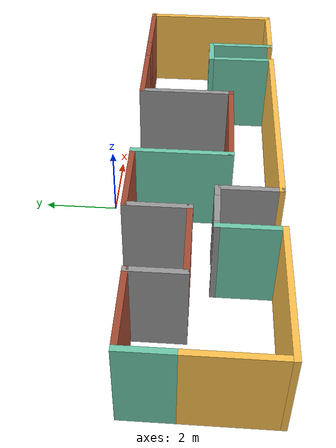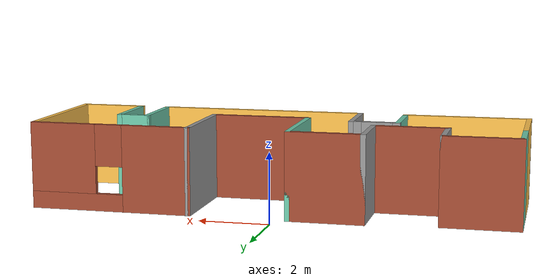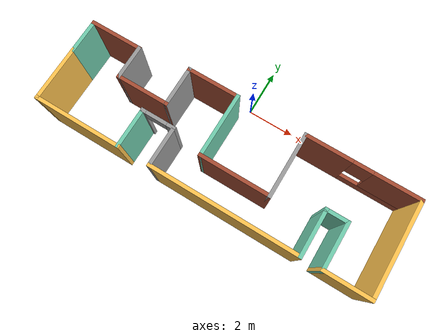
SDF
<?xml version='1.0'?>
<sdf version='1.6'>
  <model name='house'>
    <pose frame=''>0.215 -2.515 0 0 -0 0</pose>
    <link name='Wall_0'>
      <collision name='Wall_0_Collision'>
        <geometry>
          <box>
            <size>1.5 0.15 2.5</size>
          </box>
        </geometry>
        <pose frame=''>0 0 1.25 0 -0 0</pose>
      </collision>
      <visual name='Wall_0_Visual'>
        <pose frame=''>0 0 1.25 0 -0 0</pose>
        <geometry>
          <box>
            <size>1.5 0.15 2.5</size>
          </box>
        </geometry>
        <material>
          <script>
            <uri>file://media/materials/scripts/gazebo.material</uri>
            <name>Gazebo/Grey</name>
          </script>
          <ambient>0.435294 0.796078 0.67451 1</ambient>
        </material>
        <meta>
          <layer>0</layer>
        </meta>
      </visual>
      <pose frame=''>-6.875 1 0 0 -0 1.5708</pose>
    </link>
    <link name='Wall_1'>
      <collision name='Wall_1_Collision'>
        <geometry>
          <box>
            <size>2.25 0.15 2.5</size>
          </box>
        </geometry>
        <pose frame=''>0 0 1.25 0 -0 0</pose>
      </collision>
      <visual name='Wall_1_Visual'>
        <pose frame=''>0 0 1.25 0 -0 0</pose>
        <geometry>
          <box>
            <size>2.25 0.15 2.5</size>
          </box>
        </geometry>
        <material>
          <script>
            <uri>file://media/materials/scripts/gazebo.material</uri>
            <name>Gazebo/Bricks</name>
          </script>
          <ambient>1 1 1 1</ambient>
        </material>
        <meta>
          <layer>0</layer>
        </meta>
      </visual>
      <pose frame=''>-5.825 1.675 0 0 -0 0</pose>
    </link>
    <link name='Wall_10'>
      <collision name='Wall_10_Collision'>
        <geometry>
          <box>
            <size>4 0.15 2.5</size>
          </box>
        </geometry>
        <pose frame=''>0 0 1.25 0 -0 0</pose>
      </collision>
      <visual name='Wall_10_Visual'>
        <pose frame=''>0 0 1.25 0 -0 0</pose>
        <geometry>
          <box>
            <size>4 0.15 2.5</size>
          </box>
        </geometry>
        <material>
          <script>
            <uri>file://media/materials/scripts/gazebo.material</uri>
            <name>Gazebo/Grey</name>
          </script>
          <ambient>1 0.764706 0.305882 1</ambient>
        </material>
        <meta>
          <layer>0</layer>
        </meta>
      </visual>
      <pose frame=''>6.875 0 0 0 0 -1.5708</pose>
    </link>
    <link name='Wall_11'>
      <collision name='Wall_11_Collision'>
        <geometry>
          <box>
            <size>2 0.15 2.5</size>
          </box>
        </geometry>
        <pose frame=''>0 0 1.25 0 -0 0</pose>
      </collision>
      <visual name='Wall_11_Visual'>
        <pose frame=''>0 0 1.25 0 -0 0</pose>
        <geometry>
          <box>
            <size>2 0.15 2.5</size>
          </box>
        </geometry>
        <material>
          <script>
            <uri>file://media/materials/scripts/gazebo.material</uri>
            <name>Gazebo/Grey</name>
          </script>
          <ambient>1 0.764706 0.305882 1</ambient>
        </material>
        <meta>
          <layer>0</layer>
        </meta>
      </visual>
      <pose frame=''>5.95 -1.925 0 0 -0 3.14159</pose>
    </link>
    <link name='Wall_12'>
      <collision name='Wall_12_Collision'>
        <geometry>
          <box>
            <size>2 0.15 2.5</size>
          </box>
        </geometry>
        <pose frame=''>0 0 1.25 0 -0 0</pose>
      </collision>
      <visual name='Wall_12_Visual'>
        <pose frame=''>0 0 1.25 0 -0 0</pose>
        <geometry>
          <box>
            <size>2 0.15 2.5</size>
          </box>
        </geometry>
        <material>
          <script>
            <uri>file://media/materials/scripts/gazebo.material</uri>
            <name>Gazebo/Grey</name>
          </script>
          <ambient>0.435294 0.796078 0.67451 1</ambient>
        </material>
        <meta>
          <layer>0</layer>
        </meta>
      </visual>
      <pose frame=''>5.025 -1 0 0 -0 1.5708</pose>
    </link>
    <link name='Wall_13'>
      <collision name='Wall_13_Collision'>
        <geometry>
          <box>
            <size>1 0.15 2.5</size>
          </box>
        </geometry>
        <pose frame=''>0 0 1.25 0 -0 0</pose>
      </collision>
      <visual name='Wall_13_Visual'>
        <pose frame=''>0 0 1.25 0 -0 0</pose>
        <geometry>
          <box>
            <size>1 0.15 2.5</size>
          </box>
        </geometry>
        <material>
          <script>
            <uri>file://media/materials/scripts/gazebo.material</uri>
            <name>Gazebo/Grey</name>
          </script>
          <ambient>0.435294 0.796078 0.67451 1</ambient>
        </material>
        <meta>
          <layer>0</layer>
        </meta>
      </visual>
      <pose frame=''>4.6 -0.075 0 0 -0 3.14159</pose>
    </link>
    <link name='Wall_14'>
      <collision name='Wall_14_Collision'>
        <geometry>
          <box>
            <size>2 0.15 2.5</size>
          </box>
        </geometry>
        <pose frame=''>0 0 1.25 0 -0 0</pose>
      </collision>
      <visual name='Wall_14_Visual'>
        <pose frame=''>0 0 1.25 0 -0 0</pose>
        <geometry>
          <box>
            <size>2 0.15 2.5</size>
          </box>
        </geometry>
        <material>
          <script>
            <uri>file://media/materials/scripts/gazebo.material</uri>
            <name>Gazebo/Grey</name>
          </script>
          <ambient>0.435294 0.796078 0.67451 1</ambient>
        </material>
        <meta>
          <layer>0</layer>
        </meta>
      </visual>
      <pose frame=''>4.175 -1 0 0 0 -1.5708</pose>
    </link>
    <link name='Wall_15'>
      <collision name='Wall_15_Collision'>
        <geometry>
          <box>
            <size>6.25 0.15 2.5</size>
          </box>
        </geometry>
        <pose frame=''>0 0 1.25 0 -0 0</pose>
      </collision>
      <visual name='Wall_15_Visual'>
        <pose frame=''>0 0 1.25 0 -0 0</pose>
        <geometry>
          <box>
            <size>6.25 0.15 2.5</size>
          </box>
        </geometry>
        <material>
          <script>
            <uri>file://media/materials/scripts/gazebo.material</uri>
            <name>Gazebo/Grey</name>
          </script>
          <ambient>1 0.764706 0.305882 1</ambient>
        </material>
        <meta>
          <layer>0</layer>
        </meta>
      </visual>
      <pose frame=''>1.125 -1.925 0 0 -0 3.14159</pose>
    </link>
    <link name='Wall_16'>
      <collision name='Wall_16_Collision'>
        <geometry>
          <box>
            <size>1.75 0.15 2.5</size>
          </box>
        </geometry>
        <pose frame=''>0 0 1.25 0 -0 0</pose>
      </collision>
      <visual name='Wall_16_Visual'>
        <pose frame=''>0 0 1.25 0 -0 0</pose>
        <geometry>
          <box>
            <size>1.75 0.15 2.5</size>
          </box>
        </geometry>
        <material>
          <script>
            <uri>file://media/materials/scripts/gazebo.material</uri>
            <name>Gazebo/Grey</name>
          </script>
          <ambient>1 1 1 1</ambient>
        </material>
        <meta>
          <layer>0</layer>
        </meta>
      </visual>
      <pose frame=''>-1.925 -1.125 0 0 -0 1.5708</pose>
    </link>
    <link name='Wall_17'>
      <pose frame=''>-2.6 -0.325 0 0 -0 3.14159</pose>
      <visual name='Wall_17_Visual_0'>
        <pose frame=''>-0.5625 0 1.25 0 -0 0</pose>
        <geometry>
          <box>
            <size>0.375 0.15 2.5</size>
          </box>
        </geometry>
        <material>
          <script>
            <uri>file://media/materials/scripts/gazebo.material</uri>
            <name>Gazebo/Grey</name>
          </script>
          <ambient>1 1 1 1</ambient>
        </material>
        <meta>
          <layer>0</layer>
        </meta>
      </visual>
      <collision name='Wall_17_Collision_0'>
        <geometry>
          <box>
            <size>0.375 0.15 2.5</size>
          </box>
        </geometry>
        <pose frame=''>-0.5625 0 1.25 0 -0 0</pose>
      </collision>
      <visual name='Wall_17_Visual_1'>
        <pose frame=''>0.6375 0 1.25 0 -0 0</pose>
        <geometry>
          <box>
            <size>0.225 0.15 2.5</size>
          </box>
        </geometry>
        <material>
          <script>
            <uri>file://media/materials/scripts/gazebo.material</uri>
            <name>Gazebo/Grey</name>
          </script>
          <ambient>1 1 1 1</ambient>
        </material>
        <meta>
          <layer>0</layer>
        </meta>
      </visual>
      <collision name='Wall_17_Collision_1'>
        <geometry>
          <box>
            <size>0.225 0.15 2.5</size>
          </box>
        </geometry>
        <pose frame=''>0.6375 0 1.25 0 -0 0</pose>
      </collision>
      <visual name='Wall_17_Visual_2'>
        <pose frame=''>0.075 0 2.25 0 -0 0</pose>
        <geometry>
          <box>
            <size>0.9 0.15 0.5</size>
          </box>
        </geometry>
        <material>
          <script>
            <uri>file://media/materials/scripts/gazebo.material</uri>
            <name>Gazebo/Grey</name>
          </script>
          <ambient>1 1 1 1</ambient>
        </material>
        <meta>
          <layer>0</layer>
        </meta>
      </visual>
      <collision name='Wall_17_Collision_2'>
        <geometry>
          <box>
            <size>0.9 0.15 0.5</size>
          </box>
        </geometry>
        <pose frame=''>0.075 0 2.25 0 -0 0</pose>
      </collision>
    </link>
    <link name='Wall_18'>
      <collision name='Wall_18_Collision'>
        <geometry>
          <box>
            <size>1.75 0.15 2.5</size>
          </box>
        </geometry>
        <pose frame=''>0 0 1.25 0 -0 0</pose>
      </collision>
      <visual name='Wall_18_Visual'>
        <pose frame=''>0 0 1.25 0 -0 0</pose>
        <geometry>
          <box>
            <size>1.75 0.15 2.5</size>
          </box>
        </geometry>
        <material>
          <script>
            <uri>file://media/materials/scripts/gazebo.material</uri>
            <name>Gazebo/Grey</name>
          </script>
          <ambient>0.435294 0.796078 0.67451 1</ambient>
        </material>
        <meta>
          <layer>0</layer>
        </meta>
      </visual>
      <pose frame=''>-3.275 -1.125 0 0 0 -1.5708</pose>
    </link>
    <link name='Wall_19'>
      <collision name='Wall_19_Collision'>
        <geometry>
          <box>
            <size>3.75 0.15 2.5</size>
          </box>
        </geometry>
        <pose frame=''>0 0 1.25 0 -0 0</pose>
      </collision>
      <visual name='Wall_19_Visual'>
        <pose frame=''>0 0 1.25 0 -0 0</pose>
        <geometry>
          <box>
            <size>3.75 0.15 2.5</size>
          </box>
        </geometry>
        <material>
          <script>
            <uri>file://media/materials/scripts/gazebo.material</uri>
            <name>Gazebo/Grey</name>
          </script>
          <ambient>1 0.764706 0.305882 1</ambient>
        </material>
        <meta>
          <layer>0</layer>
        </meta>
      </visual>
      <pose frame=''>-5.075 -1.925 0 0 -0 3.14159</pose>
    </link>
    <link name='Wall_2'>
      <collision name='Wall_2_Collision'>
        <geometry>
          <box>
            <size>1.5 0.15 2.5</size>
          </box>
        </geometry>
        <pose frame=''>0 0 1.25 0 -0 0</pose>
      </collision>
      <visual name='Wall_2_Visual'>
        <pose frame=''>0 0 1.25 0 -0 0</pose>
        <geometry>
          <box>
            <size>1.5 0.15 2.5</size>
          </box>
        </geometry>
        <material>
          <script>
            <uri>file://media/materials/scripts/gazebo.material</uri>
            <name>Gazebo/Grey</name>
          </script>
          <ambient>1 1 1 1</ambient>
        </material>
        <meta>
          <layer>0</layer>
        </meta>
      </visual>
      <pose frame=''>-4.775 1 0 0 0 -1.5708</pose>
    </link>
    <link name='Wall_20'>
      <collision name='Wall_20_Collision'>
        <geometry>
          <box>
            <size>2.4 0.15 2.5</size>
          </box>
        </geometry>
        <pose frame=''>0 0 1.25 0 -0 0</pose>
      </collision>
      <visual name='Wall_20_Visual'>
        <pose frame=''>0 0 1.25 0 -0 0</pose>
        <geometry>
          <box>
            <size>2.4 0.15 2.5</size>
          </box>
        </geometry>
        <material>
          <script>
            <uri>file://media/materials/scripts/gazebo.material</uri>
            <name>Gazebo/Grey</name>
          </script>
          <ambient>1 0.764706 0.305882 1</ambient>
        </material>
        <meta>
          <layer>0</layer>
        </meta>
      </visual>
      <pose frame=''>-6.875 -0.8 0 0 -0 1.5708</pose>
    </link>
    <link name='Wall_3'>
      <collision name='Wall_3_Collision'>
        <geometry>
          <box>
            <size>2.25 0.15 2.5</size>
          </box>
        </geometry>
        <pose frame=''>0 0 1.25 0 -0 0</pose>
      </collision>
      <visual name='Wall_3_Visual'>
        <pose frame=''>0 0 1.25 0 -0 0</pose>
        <geometry>
          <box>
            <size>2.25 0.15 2.5</size>
          </box>
        </geometry>
        <material>
          <script>
            <uri>file://media/materials/scripts/gazebo.material</uri>
            <name>Gazebo/Bricks</name>
          </script>
          <ambient>1 1 1 1</ambient>
        </material>
        <meta>
          <layer>0</layer>
        </meta>
      </visual>
      <pose frame=''>-3.725 0.325 0 0 -0 0</pose>
    </link>
    <link name='Wall_4'>
      <collision name='Wall_4_Collision'>
        <geometry>
          <box>
            <size>1.75 0.15 2.5</size>
          </box>
        </geometry>
        <pose frame=''>0 0 1.25 0 -0 0</pose>
      </collision>
      <visual name='Wall_4_Visual'>
        <pose frame=''>0 0 1.25 0 -0 0</pose>
        <geometry>
          <box>
            <size>1.75 0.15 2.5</size>
          </box>
        </geometry>
        <material>
          <script>
            <uri>file://media/materials/scripts/gazebo.material</uri>
            <name>Gazebo/Grey</name>
          </script>
          <ambient>1 1 1 1</ambient>
        </material>
        <meta>
          <layer>0</layer>
        </meta>
      </visual>
      <pose frame=''>-2.675 1.125 0 0 -0 1.5708</pose>
    </link>
    <link name='Wall_5'>
      <collision name='Wall_5_Collision'>
        <geometry>
          <box>
            <size>2.25 0.15 2.5</size>
          </box>
        </geometry>
        <pose frame=''>0 0 1.25 0 -0 0</pose>
      </collision>
      <visual name='Wall_5_Visual'>
        <pose frame=''>0 0 1.25 0 -0 0</pose>
        <geometry>
          <box>
            <size>2.25 0.15 2.5</size>
          </box>
        </geometry>
        <material>
          <script>
            <uri>file://media/materials/scripts/gazebo.material</uri>
            <name>Gazebo/Bricks</name>
          </script>
          <ambient>1 1 1 1</ambient>
        </material>
        <meta>
          <layer>0</layer>
        </meta>
      </visual>
      <pose frame=''>-1.625 1.925 0 0 -0 0</pose>
    </link>
    <link name='Wall_6'>
      <collision name='Wall_6_Collision'>
        <geometry>
          <box>
            <size>2.75 0.15 2.5</size>
          </box>
        </geometry>
        <pose frame=''>0 0 1.25 0 -0 0</pose>
      </collision>
      <visual name='Wall_6_Visual'>
        <pose frame=''>0 0 1.25 0 -0 0</pose>
        <geometry>
          <box>
            <size>2.75 0.15 2.5</size>
          </box>
        </geometry>
        <material>
          <script>
            <uri>file://media/materials/scripts/gazebo.material</uri>
            <name>Gazebo/Grey</name>
          </script>
          <ambient>0.435294 0.796078 0.67451 1</ambient>
        </material>
        <meta>
          <layer>0</layer>
        </meta>
      </visual>
      <pose frame=''>-0.575 0.625 0 0 0 -1.5708</pose>
    </link>
    <link name='Wall_7'>
      <collision name='Wall_7_Collision'>
        <geometry>
          <box>
            <size>3 0.15 2.5</size>
          </box>
        </geometry>
        <pose frame=''>0 0 1.25 0 -0 0</pose>
      </collision>
      <visual name='Wall_7_Visual'>
        <pose frame=''>0 0 1.25 0 -0 0</pose>
        <geometry>
          <box>
            <size>3 0.15 2.5</size>
          </box>
        </geometry>
        <material>
          <script>
            <uri>file://media/materials/scripts/gazebo.material</uri>
            <name>Gazebo/Bricks</name>
          </script>
          <ambient>1 1 1 1</ambient>
        </material>
        <meta>
          <layer>0</layer>
        </meta>
      </visual>
      <pose frame=''>0.85 -0.675 0 0 -0 0</pose>
    </link>
    <link name='Wall_8'>
      <collision name='Wall_8_Collision'>
        <geometry>
          <box>
            <size>2.75 0.15 2.5</size>
          </box>
        </geometry>
        <pose frame=''>0 0 1.25 0 -0 0</pose>
      </collision>
      <visual name='Wall_8_Visual'>
        <pose frame=''>0 0 1.25 0 -0 0</pose>
        <geometry>
          <box>
            <size>2.75 0.15 2.5</size>
          </box>
        </geometry>
        <material>
          <script>
            <uri>file://media/materials/scripts/gazebo.material</uri>
            <name>Gazebo/Grey</name>
          </script>
          <ambient>1 1 1 1</ambient>
        </material>
        <meta>
          <layer>0</layer>
        </meta>
      </visual>
      <pose frame=''>2.275 0.625 0 0 -0 1.5708</pose>
    </link>
    <link name='Wall_9'>
      <pose frame=''>4.575 1.925 0 0 -0 0</pose>
      <visual name='Wall_9_Visual_0'>
        <pose frame=''>-1.3725 0 1.25 0 -0 0</pose>
        <geometry>
          <box>
            <size>2.005 0.15 2.5</size>
          </box>
        </geometry>
        <material>
          <script>
            <uri>file://media/materials/scripts/gazebo.material</uri>
            <name>Gazebo/Bricks</name>
          </script>
          <ambient>1 1 1 1</ambient>
        </material>
        <meta>
          <layer>0</layer>
        </meta>
      </visual>
      <collision name='Wall_9_Collision_0'>
        <geometry>
          <box>
            <size>2.005 0.15 2.5</size>
          </box>
        </geometry>
        <pose frame=''>-1.3725 0 1.25 0 -0 0</pose>
      </collision>
      <visual name='Wall_9_Visual_1'>
        <pose frame=''>1.0025 0 0.25 0 -0 0</pose>
        <geometry>
          <box>
            <size>2.745 0.15 0.5</size>
          </box>
        </geometry>
        <material>
          <script>
            <uri>file://media/materials/scripts/gazebo.material</uri>
            <name>Gazebo/Bricks</name>
          </script>
          <ambient>1 1 1 1</ambient>
        </material>
        <meta>
          <layer>0</layer>
        </meta>
      </visual>
      <collision name='Wall_9_Collision_1'>
        <geometry>
          <box>
            <size>2.745 0.15 0.5</size>
          </box>
        </geometry>
        <pose frame=''>1.0025 0 0.25 0 -0 0</pose>
      </collision>
      <visual name='Wall_9_Visual_2'>
        <pose frame=''>1.4025 0 1.5 0 -0 0</pose>
        <geometry>
          <box>
            <size>1.945 0.15 2</size>
          </box>
        </geometry>
        <material>
          <script>
            <uri>file://media/materials/scripts/gazebo.material</uri>
            <name>Gazebo/Bricks</name>
          </script>
          <ambient>1 1 1 1</ambient>
        </material>
        <meta>
          <layer>0</layer>
        </meta>
      </visual>
      <collision name='Wall_9_Collision_2'>
        <geometry>
          <box>
            <size>1.945 0.15 2</size>
          </box>
        </geometry>
        <pose frame=''>1.4025 0 1.5 0 -0 0</pose>
      </collision>
      <visual name='Wall_9_Visual_3'>
        <pose frame=''>0.03 0 1.9 0 -0 0</pose>
        <geometry>
          <box>
            <size>0.8 0.15 1.2</size>
          </box>
        </geometry>
        <material>
          <script>
            <uri>file://media/materials/scripts/gazebo.material</uri>
            <name>Gazebo/Bricks</name>
          </script>
          <ambient>1 1 1 1</ambient>
        </material>
        <meta>
          <layer>0</layer>
        </meta>
      </visual>
      <collision name='Wall_9_Collision_3'>
        <geometry>
          <box>
            <size>0.8 0.15 1.2</size>
          </box>
        </geometry>
        <pose frame=''>0.03 0 1.9 0 -0 0</pose>
      </collision>
    </link>
    <static>1</static>
  </model>
</sdf>
